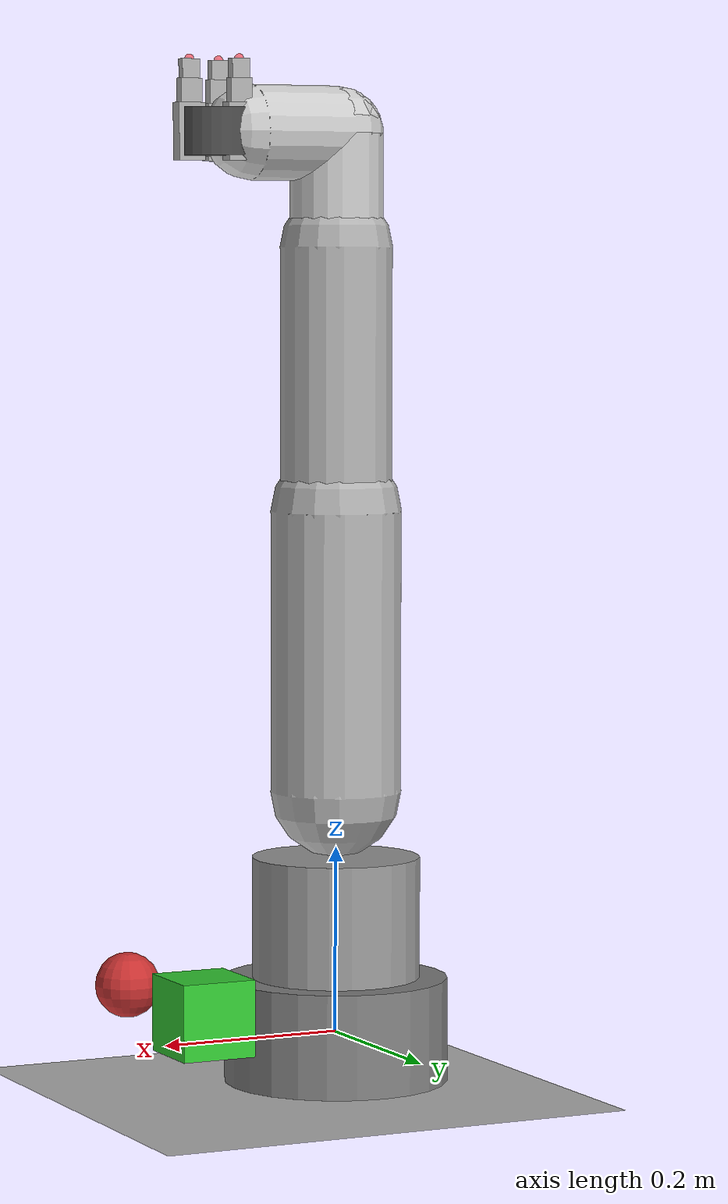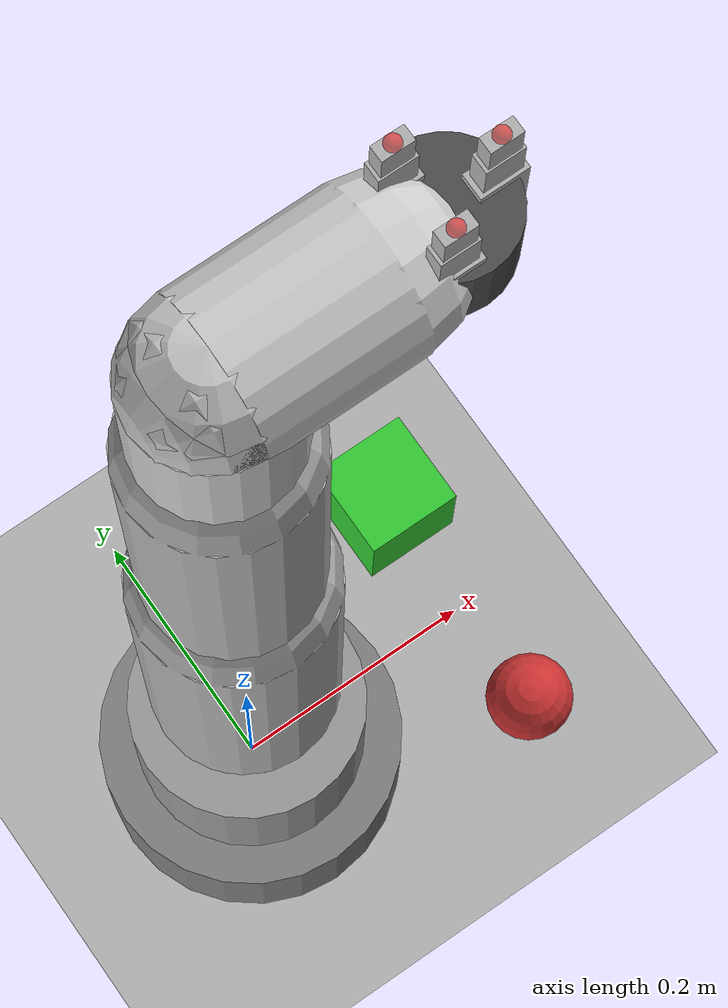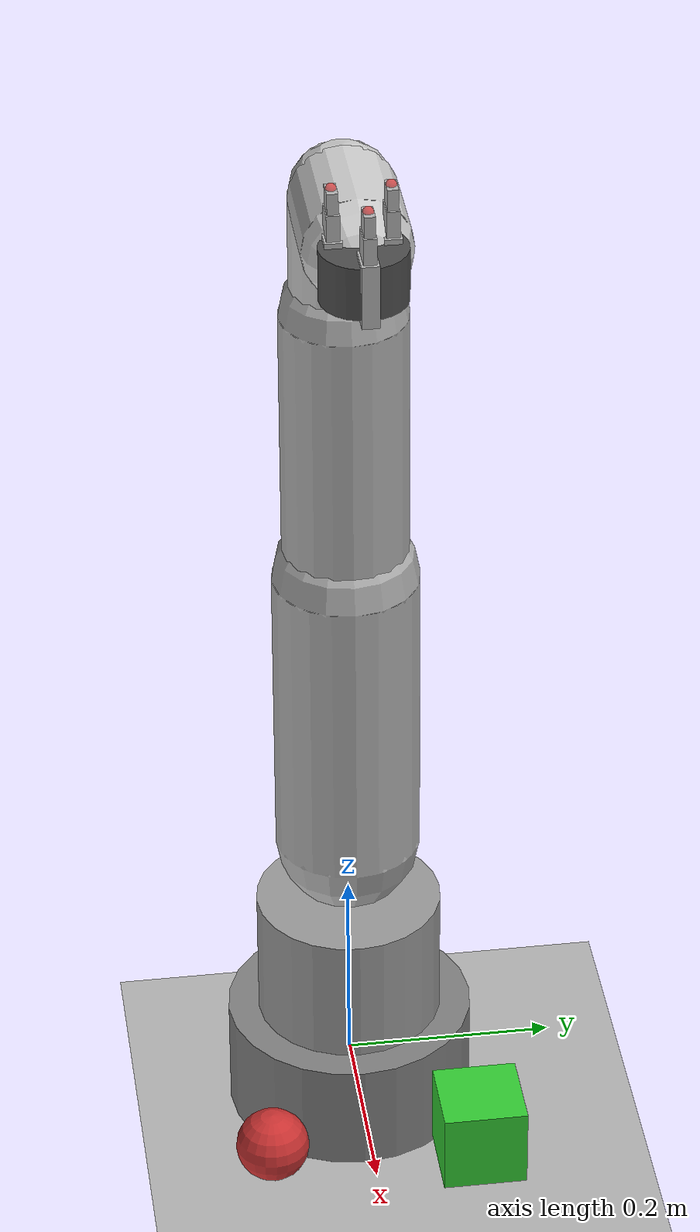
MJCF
<!-- 6-DOF Robotic Arm with Optimized 3-Finger Gripper for MuJoCo -->
<mujoco model="robotic_arm_3_finger_gripper">
  <compiler angle="radian" inertiafromgeom="true"/>

  <option timestep="0.002" gravity="0 0 -9.81" iterations="50" solver="Newton"/>

  <default>
    <joint damping="2.0" armature="0.2"/>
    <geom friction="1.0 0.5 0.01" rgba="0.7 0.7 0.7 1"/>
    <motor ctrlrange="-1 1" ctrllimited="true"/>
  </default>

  <asset>
    <texture type="skybox" builtin="gradient" rgb1="0.3 0.5 0.7" rgb2="0 0 0" width="512" height="512"/>
    <texture name="texplane" type="2d" builtin="checker" rgb1=".2 .3 .4" rgb2=".1 .2 .3" width="512" height="512" mark="cross" markrgb=".8 .8 .8"/>
    <texture name="texgeom" type="cube" builtin="flat" mark="cross" width="128" height="128" rgb1="0.4 0.4 0.8" rgb2="0.4 0.4 0.8" markrgb="1 1 1"/>
    <material name="matplane" reflectance="0.3" texture="texplane" texrepeat="1 1" texuniform="true"/>
    <material name="matgeom" texture="texgeom" texuniform="true" rgba="0.4 0.4 0.8 1"/>
    <material name="gripper_mat" rgba="0.3 0.3 0.8 1"/>
    <material name="finger_mat" rgba="0.2 0.5 0.8 1"/>
  </asset>

  <worldbody>
    <!-- 场景设置 -->
    <geom name="floor" pos="0 0 -0.05" size="2 2 0.05" type="plane" material="matplane" condim="3"/>
    <light directional="true" diffuse=".8 .8 .8" specular="0.3 0.3 0.3" pos="0 0 3.0" dir="0 0 -1"/>
    <light directional="false" diffuse=".6 .6 .6" specular="0.2 0.2 0.2" pos="2 2 3" dir="-1 -1 -1"/>

    <!-- 目标物体 - 多种形状用于测试 -->
    <body name="target_cube" pos="0.2 0.1 0.05">
      <freejoint name="cube_floating"/>
      <geom name="cube_geom" type="box" size="0.04 0.04 0.04" rgba="0.2 0.8 0.2 1" mass="0.2"/>
      <site name="cube_site" pos="0 0 0" size="0.01"/>
    </body>

    <body name="target_sphere" pos="0.2 -0.1 0.05">
      <freejoint name="sphere_floating"/>
      <geom name="sphere_geom" type="sphere" size="0.035" rgba="0.8 0.2 0.2 1" mass="0.15"/>
      <site name="sphere_site" pos="0 0 0" size="0.01"/>
    </body>

    <!-- 机械臂基座 -->
    <body name="base_link" pos="0 0 0">
      <geom name="base_geom" type="cylinder" size="0.12 0.06" rgba="0.5 0.5 0.5 1" mass="2.0"/>

      <!-- 关节1: 基座旋转 -->
      <body name="shoulder_link" pos="0 0 0.12">
        <joint name="joint_1" type="hinge" axis="0 0 1" range="-3.14 3.14" damping="2.0"/>
        <geom name="shoulder_geom" type="cylinder" size="0.09 0.07" rgba="0.6 0.6 0.6 1" mass="1.5"/>

        <!-- 关节2: 肩部 -->
        <body name="upper_arm_link" pos="0 0 0.14">
          <joint name="joint_2" type="hinge" axis="0 1 0" range="-1.57 1.57" damping="2.0"/>
          <geom name="upper_arm_geom" type="capsule" size="0.07" fromto="0 0 0 0 0 0.3" rgba="0.7 0.7 0.7 1" mass="1.0"/>

          <!-- 关节3: 肘部 -->
          <body name="forearm_link" pos="0 0 0.3">
            <joint name="joint_3" type="hinge" axis="0 1 0" range="-1.57 1.57" damping="1.5"/>
            <geom name="forearm_geom" type="capsule" size="0.06" fromto="0 0 0 0 0 0.28" rgba="0.7 0.7 0.7 1" mass="0.8"/>

            <!-- 关节4: 腕部1 -->
            <body name="wrist_1_link" pos="0 0 0.28">
              <joint name="joint_4" type="hinge" axis="0 0 1" range="-2.0 2.0" damping="1.0"/>
              <geom name="wrist_1_geom" type="capsule" size="0.05" fromto="0 0 0 0 0 0.12" rgba="0.8 0.8 0.8 1" mass="0.3"/>

              <!-- 关节5: 腕部2 -->
              <body name="wrist_2_link" pos="0 0 0.12">
                <joint name="joint_5" type="hinge" axis="0 1 0" range="-1.57 1.57" damping="1.0"/>
                <geom name="wrist_2_geom" type="capsule" size="0.05" fromto="0 0 0 0.1 0 0" rgba="0.8 0.8 0.8 1" mass="0.2"/>

                <!-- 关节6: 腕部3 (末端执行器连接) -->
                <body name="wrist_3_link" pos="0.1 0 0">
                  <joint name="joint_6" type="hinge" axis="1 0 0" range="-1.57 1.57" damping="0.5"/>
                  <geom name="wrist_3_geom" type="cylinder" size="0.04 0.02" rgba="0.8 0.8 0.8 1" mass="0.1"/>

                  <!-- 优化的三指抓取器设计 - 符合机械结构 -->
                  <body name="gripper_base" pos="0.04 0 0">
                    <geom name="gripper_base_geom" type="cylinder" size="0.04 0.025" rgba="0.3 0.3 0.3 1" mass="0.1"/>
                    <site name="grip_center" pos="0 0 0" size="0.005" rgba="1 0 0 1"/>

                    <!-- 手指1 (0度方向) - 改进的机械结构 -->
                    <body name="finger_1_base" pos="0.03 0 0">
                      <joint name="finger_1_joint" type="slide" axis="0 0 1" range="0 0.06" damping="0.5"/>
                      <geom name="finger_1_base_geom" type="box" size="0.015 0.008 0.03" material="finger_mat" mass="0.03"/>

                      <body name="finger_1_proximal" pos="0 0 0.03">
                        <joint name="finger_1_proximal_joint" type="hinge" axis="0 1 0" range="-0.3 1.2" damping="0.3"/>
                        <geom name="finger_1_proximal_geom" type="box" size="0.012 0.006 0.025" material="finger_mat" mass="0.02"/>

                        <body name="finger_1_distal" pos="0 0 0.025">
                          <joint name="finger_1_distal_joint" type="hinge" axis="0 1 0" range="0 1.0" damping="0.2"/>
                          <geom name="finger_1_distal_geom" type="box" size="0.01 0.005 0.02" material="finger_mat" mass="0.015"/>
                          <site name="finger_1_contact" pos="0 0 0.02" size="0.005" rgba="1 0 0 0.5"/>
                        </body>
                      </body>
                    </body>

                    <!-- 手指2 (120度方向) - 改进的机械结构 -->
                    <body name="finger_2_base" pos="-0.015 0.026 0">
                      <joint name="finger_2_joint" type="slide" axis="0 0 1" range="0 0.06" damping="0.5"/>
                      <geom name="finger_2_base_geom" type="box" size="0.015 0.008 0.03" material="finger_mat" mass="0.03"/>

                      <body name="finger_2_proximal" pos="0 0 0.03">
                        <joint name="finger_2_proximal_joint" type="hinge" axis="0.866 0.5 0" range="-0.3 1.2" damping="0.3"/>
                        <geom name="finger_2_proximal_geom" type="box" size="0.012 0.006 0.025" material="finger_mat" mass="0.02"/>

                        <body name="finger_2_distal" pos="0 0 0.025">
                          <joint name="finger_2_distal_joint" type="hinge" axis="0.866 0.5 0" range="0 1.0" damping="0.2"/>
                          <geom name="finger_2_distal_geom" type="box" size="0.01 0.005 0.02" material="finger_mat" mass="0.015"/>
                          <site name="finger_2_contact" pos="0 0 0.02" size="0.005" rgba="1 0 0 0.5"/>
                        </body>
                      </body>
                    </body>

                    <!-- 手指3 (240度方向) - 改进的机械结构 -->
                    <body name="finger_3_base" pos="-0.015 -0.026 0">
                      <joint name="finger_3_joint" type="slide" axis="0 0 1" range="0 0.06" damping="0.5"/>
                      <geom name="finger_3_base_geom" type="box" size="0.015 0.008 0.03" material="finger_mat" mass="0.03"/>

                      <body name="finger_3_proximal" pos="0 0 0.03">
                        <joint name="finger_3_proximal_joint" type="hinge" axis="-0.866 0.5 0" range="-0.3 1.2" damping="0.3"/>
                        <geom name="finger_3_proximal_geom" type="box" size="0.012 0.006 0.025" material="finger_mat" mass="0.02"/>

                        <body name="finger_3_distal" pos="0 0 0.025">
                          <joint name="finger_3_distal_joint" type="hinge" axis="-0.866 0.5 0" range="0 1.0" damping="0.2"/>
                          <geom name="finger_3_distal_geom" type="box" size="0.01 0.005 0.02" material="finger_mat" mass="0.015"/>
                          <site name="finger_3_contact" pos="0 0 0.02" size="0.005" rgba="1 0 0 0.5"/>
                        </body>
                      </body>
                    </body>
                  </body>
                </body>
              </body>
            </body>
          </body>
        </body>
      </body>
    </body>
  </worldbody>

  <actuator>
    <!-- 6个关节电机 -->
    <motor name="motor_1" joint="joint_1" gear="50"/>
    <motor name="motor_2" joint="joint_2" gear="50"/>
    <motor name="motor_3" joint="joint_3" gear="30"/>
    <motor name="motor_4" joint="joint_4" gear="20"/>
    <motor name="motor_5" joint="joint_5" gear="20"/>
    <motor name="motor_6" joint="joint_6" gear="10"/>

    <!-- 改进的抓取器电机 - 每个手指3个关节，共9个电机 -->
    <motor name="finger_1_slide_motor" joint="finger_1_joint" gear="20"/>
    <motor name="finger_1_proximal_motor" joint="finger_1_proximal_joint" gear="15"/>
    <motor name="finger_1_distal_motor" joint="finger_1_distal_joint" gear="8"/>

    <motor name="finger_2_slide_motor" joint="finger_2_joint" gear="20"/>
    <motor name="finger_2_proximal_motor" joint="finger_2_proximal_joint" gear="15"/>
    <motor name="finger_2_distal_motor" joint="finger_2_distal_joint" gear="8"/>

    <motor name="finger_3_slide_motor" joint="finger_3_joint" gear="20"/>
    <motor name="finger_3_proximal_motor" joint="finger_3_proximal_joint" gear="15"/>
    <motor name="finger_3_distal_motor" joint="finger_3_distal_joint" gear="8"/>
  </actuator>

  <equality>
    <!-- 手指滑动同步 -->
    <joint name="finger_slide_sync_1" joint1="finger_1_joint" joint2="finger_2_joint" polycoef="0 1 0 0 0"/>
    <joint name="finger_slide_sync_2" joint1="finger_1_joint" joint2="finger_3_joint" polycoef="0 1 0 0 0"/>

    <!-- 近端关节同步 -->
    <joint name="finger_proximal_sync_1" joint1="finger_1_proximal_joint" joint2="finger_2_proximal_joint" polycoef="0 1 0 0 0"/>
    <joint name="finger_proximal_sync_2" joint1="finger_1_proximal_joint" joint2="finger_3_proximal_joint" polycoef="0 1 0 0 0"/>

    <!-- 远端关节同步 -->
    <joint name="finger_distal_sync_1" joint1="finger_1_distal_joint" joint2="finger_2_distal_joint" polycoef="0 1 0 0 0"/>
    <joint name="finger_distal_sync_2" joint1="finger_1_distal_joint" joint2="finger_3_distal_joint" polycoef="0 1 0 0 0"/>
  </equality>

  <sensor>
    <!-- 关节位置传感器 -->
    <jointpos name="joint_1_pos" joint="joint_1"/>
    <jointpos name="joint_2_pos" joint="joint_2"/>
    <jointpos name="joint_3_pos" joint="joint_3"/>
    <jointpos name="joint_4_pos" joint="joint_4"/>
    <jointpos name="joint_5_pos" joint="joint_5"/>
    <jointpos name="joint_6_pos" joint="joint_6"/>

    <!-- 抓取器关节传感器 -->
    <jointpos name="finger_1_slide_pos" joint="finger_1_joint"/>
    <jointpos name="finger_1_proximal_pos" joint="finger_1_proximal_joint"/>
    <jointpos name="finger_1_distal_pos" joint="finger_1_distal_joint"/>

    <jointpos name="finger_2_slide_pos" joint="finger_2_joint"/>
    <jointpos name="finger_2_proximal_pos" joint="finger_2_proximal_joint"/>
    <jointpos name="finger_2_distal_pos" joint="finger_2_distal_joint"/>

    <jointpos name="finger_3_slide_pos" joint="finger_3_joint"/>
    <jointpos name="finger_3_proximal_pos" joint="finger_3_proximal_joint"/>
    <jointpos name="finger_3_distal_pos" joint="finger_3_distal_joint"/>

    <!-- 触觉传感器 -->
    <touch name="finger_1_touch" site="finger_1_contact"/>
    <touch name="finger_2_touch" site="finger_2_contact"/>
    <touch name="finger_3_touch" site="finger_3_contact"/>

    <!-- 抓取力矩传感器 -->
    <jointactuatorfrc name="gripper_torque" joint="finger_1_proximal_joint"/>

    <!-- 目标接近度传感器 -->
    <framepos name="grip_center_pos" objtype="site" objname="grip_center"/>
    <framepos name="target_pos" objtype="site" objname="cube_site"/>
  </sensor>
</mujoco>
